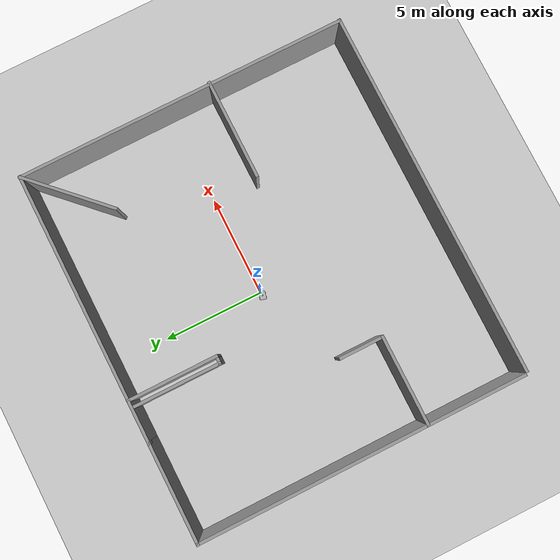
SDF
<sdf version="1.7">
 <world name="default">
  <light name="sun" type="directional">
   <pose>0 0 10 0 -0 0</pose>
   <diffuse>0.8 0.8 0.8 1</diffuse>
   <specular>0.2 0.2 0.2 1</specular>
   <attenuation>
    <range>1000</range>
    <constant>0.9</constant>
    <linear>0.01</linear>
    <quadratic>0.001</quadratic>
   </attenuation>
   <direction>-0.5 0.1 -0.9</direction>
   <spot><inner_angle>0</inner_angle><outer_angle>0</outer_angle><falloff>0</falloff></spot>
  </light>
  <model name="ground_plane">
   <static>1</static>
   <link name="link">
    <collision name="collision">
     <geometry><plane><normal>0 0 1</normal><size>100 100</size></plane></geometry>
     <surface><friction><ode><mu>100</mu><mu2>50</mu2></ode></friction></surface>
    </collision>
    <visual name="visual">
     <cast_shadows>0</cast_shadows>
     <geometry><plane><normal>0 0 1</normal><size>100 100</size></plane></geometry>
     <material>
      <script><uri>file://media/materials/scripts/gazebo.material</uri><name>Gazebo/Grey</name></script>
     </material>
    </visual>
   </link>
  </model>
  <gravity>0 0 -9.8</gravity>
  <magnetic_field>6e-06 2.3e-05 -4.2e-05</magnetic_field>
  <atmosphere type="adiabatic"/>
  <physics type="ode">
   <max_step_size>0.001</max_step_size>
   <real_time_factor>1</real_time_factor>
   <real_time_update_rate>1000</real_time_update_rate>
  </physics>
  <scene><ambient>0.4 0.4 0.4 1</ambient><background>0.7 0.7 0.7 1</background><shadows>1</shadows></scene>
  <audio><device>default</device></audio>
  <spherical_coordinates>
   <surface_model>EARTH_WGS84</surface_model>
   <latitude_deg>0</latitude_deg>
   <longitude_deg>0</longitude_deg>
   <elevation>0</elevation>
   <heading_deg>0</heading_deg>
  </spherical_coordinates>
  <model name="my_robot">
   <link name="base_footprint">
    <inertial>
     <pose>0.00973 0 0.024324 0 -0 0</pose>
     <mass>3.7</mass>
     <inertia>
      <ixx>0.0610108</ixx>
      <ixy>0</ixy>
      <ixz>-0.00452432</ixz>
      <iyy>0.0671405</iyy>
      <iyz>0</iyz>
      <izz>0.0576297</izz>
     </inertia>
    </inertial>
    <collision name="base_footprint_fixed_joint_lump__base_link_collision">
     <pose>0 0 0.05 0 -0 0</pose>
     <geometry><box><size>0.4 0.3 0.1</size></box></geometry>
    </collision>
    <collision name="base_footprint_fixed_joint_lump__camera_link_collision_1">
     <pose>0.18 0 0.15 0 -0 0</pose>
     <geometry><box><size>0.04 0.04 0.04</size></box></geometry>
    </collision>
    <collision name="base_footprint_fixed_joint_lump__lidar_collision_2">
     <pose>0 0 0.12 0 -0 0</pose>
     <geometry><cylinder><length>0.03</length><radius>0.03</radius></cylinder></geometry>
    </collision>
    <visual name="base_footprint_fixed_joint_lump__base_link_visual">
     <pose>0 0 0.05 0 -0 0</pose>
     <geometry><box><size>0.4 0.3 0.1</size></box></geometry>
    </visual>
    <visual name="base_footprint_fixed_joint_lump__camera_link_visual_1">
     <pose>0.18 0 0.15 0 -0 0</pose>
     <geometry><box><size>0.04 0.04 0.04</size></box></geometry>
    </visual>
    <visual name="base_footprint_fixed_joint_lump__lidar_visual_2">
     <pose>0 0 0.12 0 -0 0</pose>
     <geometry><cylinder><length>0.03</length><radius>0.03</radius></cylinder></geometry>
    </visual>
    <sensor name="camera_sensor" type="camera">
     <update_rate>30</update_rate>
     <camera>
      <horizontal_fov>1.396</horizontal_fov>
      <image><width>640</width><height>480</height><format>R8G8B8</format></image>
      <clip><near>0.05</near><far>20</far></clip>
     </camera>
     <plugin name="gazebo_ros_camera" filename="libgazebo_ros_camera.so">
      <camera_name>camera</camera_name>
      <image_topic_name>image_raw</image_topic_name>
      <camera_info_topic_name>camera_info</camera_info_topic_name>
      <frame_name>camera_link</frame_name>
     </plugin>
     <pose>0.18 0 0.15 0 -0 0</pose>
    </sensor>
    <sensor name="lidar_sensor" type="ray">
     <visualize>1</visualize>
     <update_rate>10</update_rate>
     <ray>
      <scan>
       <horizontal>
        <samples>360</samples>
        <resolution>1</resolution>
        <min_angle>-3.14159</min_angle>
        <max_angle>3.14159</max_angle>
       </horizontal>
       <vertical><samples>1</samples><min_angle>0</min_angle><max_angle>0</max_angle></vertical>
      </scan>
      <range><min>0.12</min><max>10</max><resolution>0.01</resolution></range>
     </ray>
     <plugin name="gazebo_ros_laser" filename="libgazebo_ros_ray_sensor.so">
      <ros><namespace>/</namespace></ros>
      <output_type>sensor_msgs/LaserScan</output_type>
      <topic_name>scan</topic_name>
      <frame_name>lidar</frame_name>
     </plugin>
     <pose>0 0 0.12 0 -0 0</pose>
    </sensor>
   </link>
   <joint name="left_front_wheel_joint" type="revolute">
    <pose relative_to="base_footprint">0.1 0.15 0.025 0 -0 0</pose>
    <parent>base_footprint</parent>
    <child>left_front_wheel</child>
    <axis>
     <xyz>0 1 0</xyz>
     <limit><lower>-1e+16</lower><upper>1e+16</upper></limit>
     <dynamics><spring_reference>0</spring_reference><spring_stiffness>0</spring_stiffness></dynamics>
    </axis>
   </joint>
   <link name="left_front_wheel">
    <pose relative_to="left_front_wheel_joint">0 0 0 0 -0 0</pose>
    <inertial>
     <mass>0.5</mass>
     <inertia><ixx>0.001</ixx><ixy>0</ixy><ixz>0</ixz><iyy>0.001</iyy><iyz>0</iyz><izz>0.001</izz></inertia>
    </inertial>
    <collision name="left_front_wheel_collision">
     <pose>0 0 0 1.57 -0 0</pose>
     <geometry><cylinder><length>0.04</length><radius>0.06</radius></cylinder></geometry>
    </collision>
    <visual name="left_front_wheel_visual">
     <pose>0 0 0 1.57 -0 0</pose>
     <geometry><cylinder><length>0.04</length><radius>0.06</radius></cylinder></geometry>
    </visual>
   </link>
   <joint name="left_rear_wheel_joint" type="revolute">
    <pose relative_to="base_footprint">-0.1 0.15 0.025 0 -0 0</pose>
    <parent>base_footprint</parent>
    <child>left_rear_wheel</child>
    <axis>
     <xyz>0 1 0</xyz>
     <limit><lower>-1e+16</lower><upper>1e+16</upper></limit>
     <dynamics><spring_reference>0</spring_reference><spring_stiffness>0</spring_stiffness></dynamics>
    </axis>
   </joint>
   <link name="left_rear_wheel">
    <pose relative_to="left_rear_wheel_joint">0 0 0 0 -0 0</pose>
    <inertial>
     <mass>0.5</mass>
     <inertia><ixx>0.001</ixx><ixy>0</ixy><ixz>0</ixz><iyy>0.001</iyy><iyz>0</iyz><izz>0.001</izz></inertia>
    </inertial>
    <collision name="left_rear_wheel_collision">
     <pose>0 0 0 1.57 -0 0</pose>
     <geometry><cylinder><length>0.04</length><radius>0.06</radius></cylinder></geometry>
    </collision>
    <visual name="left_rear_wheel_visual">
     <pose>0 0 0 1.57 -0 0</pose>
     <geometry><cylinder><length>0.04</length><radius>0.06</radius></cylinder></geometry>
    </visual>
   </link>
   <joint name="right_front_wheel_joint" type="revolute">
    <pose relative_to="base_footprint">0.1 -0.15 0.025 0 -0 0</pose>
    <parent>base_footprint</parent>
    <child>right_front_wheel</child>
    <axis>
     <xyz>0 1 0</xyz>
     <limit><lower>-1e+16</lower><upper>1e+16</upper></limit>
     <dynamics><spring_reference>0</spring_reference><spring_stiffness>0</spring_stiffness></dynamics>
    </axis>
   </joint>
   <link name="right_front_wheel">
    <pose relative_to="right_front_wheel_joint">0 0 0 0 -0 0</pose>
    <inertial>
     <mass>0.5</mass>
     <inertia><ixx>0.001</ixx><ixy>0</ixy><ixz>0</ixz><iyy>0.001</iyy><iyz>0</iyz><izz>0.001</izz></inertia>
    </inertial>
    <collision name="right_front_wheel_collision">
     <pose>0 0 0 1.57 -0 0</pose>
     <geometry><cylinder><length>0.04</length><radius>0.06</radius></cylinder></geometry>
    </collision>
    <visual name="right_front_wheel_visual">
     <pose>0 0 0 1.57 -0 0</pose>
     <geometry><cylinder><length>0.04</length><radius>0.06</radius></cylinder></geometry>
    </visual>
   </link>
   <joint name="right_rear_wheel_joint" type="revolute">
    <pose relative_to="base_footprint">-0.1 -0.15 0.025 0 -0 0</pose>
    <parent>base_footprint</parent>
    <child>right_rear_wheel</child>
    <axis>
     <xyz>0 1 0</xyz>
     <limit><lower>-1e+16</lower><upper>1e+16</upper></limit>
     <dynamics><spring_reference>0</spring_reference><spring_stiffness>0</spring_stiffness></dynamics>
    </axis>
   </joint>
   <link name="right_rear_wheel">
    <pose relative_to="right_rear_wheel_joint">0 0 0 0 -0 0</pose>
    <inertial>
     <mass>0.5</mass>
     <inertia><ixx>0.001</ixx><ixy>0</ixy><ixz>0</ixz><iyy>0.001</iyy><iyz>0</iyz><izz>0.001</izz></inertia>
    </inertial>
    <collision name="right_rear_wheel_collision">
     <pose>0 0 0 1.57 -0 0</pose>
     <geometry><cylinder><length>0.04</length><radius>0.06</radius></cylinder></geometry>
    </collision>
    <visual name="right_rear_wheel_visual">
     <pose>0 0 0 1.57 -0 0</pose>
     <geometry><cylinder><length>0.04</length><radius>0.06</radius></cylinder></geometry>
    </visual>
   </link>
   <static>0</static>
   <plugin name="diff_drive" filename="libgazebo_ros_diff_drive.so">
    <left_joint>left_front_wheel_joint</left_joint>
    <right_joint>right_front_wheel_joint</right_joint>
    <wheel_separation>0.30</wheel_separation>
    <wheel_diameter>0.12</wheel_diameter>
    <command_topic>/cmd_vel</command_topic>
    <odometry_topic>/odom</odometry_topic>
    <robot_base_frame>base_footprint</robot_base_frame>
    <odometry_frame>odom</odometry_frame>
    <publish_odom>1</publish_odom>
    <publish_odom_tf>1</publish_odom_tf>
   </plugin>
   <pose>-0.160048 -0.01763 0.035013 -5e-06 -1.2e-05 -0.229355</pose>
  </model>
  <model name="maze_1">
   <pose>0.38742 -0.706662 0 0 -0 0</pose>
   <link name="Wall_10">
    <collision name="Wall_10_Collision">
     <geometry><box><size>2.25 0.15 2.5</size></box></geometry>
     <pose>0 0 1.25 0 -0 0</pose>
    </collision>
    <visual name="Wall_10_Visual">
     <pose>0 0 1.25 0 -0 0</pose>
     <geometry><box><size>2.25 0.15 2.5</size></box></geometry>
     <material>
      <script><uri>file://media/materials/scripts/gazebo.material</uri><name>Gazebo/Grey</name></script>
      <ambient>1 1 1 1</ambient>
     </material>
     <meta><layer>0</layer></meta>
    </visual>
    <pose>-4.78472 -2.14046 0 0 -0 1.5708</pose>
   </link>
   <link name="Wall_12">
    <collision name="Wall_12_Collision">
     <geometry><box><size>13.5 0.15 2.5</size></box></geometry>
     <pose>0 0 1.25 0 -0 0</pose>
    </collision>
    <visual name="Wall_12_Visual">
     <pose>0 0 1.25 0 -0 0</pose>
     <geometry><box><size>13.5 0.15 2.5</size></box></geometry>
     <material>
      <script><uri>file://media/materials/scripts/gazebo.material</uri><name>Gazebo/Grey</name></script>
      <ambient>1 1 1 1</ambient>
     </material>
     <meta><layer>0</layer></meta>
    </visual>
    <pose>2.39028 8.15954 0 0 -0 0</pose>
   </link>
   <link name="Wall_13">
    <collision name="Wall_13_Collision">
     <geometry><box><size>16.5003 0.15 2.5</size></box></geometry>
     <pose>0 0 1.25 0 -0 0</pose>
    </collision>
    <visual name="Wall_13_Visual">
     <pose>0 0 1.25 0 -0 0</pose>
     <geometry><box><size>16.5003 0.15 2.5</size></box></geometry>
     <material>
      <script><uri>file://media/materials/scripts/gazebo.material</uri><name>Gazebo/Grey</name></script>
      <ambient>1 1 1 1</ambient>
     </material>
     <meta><layer>0</layer></meta>
    </visual>
    <pose>9.06528 -0.015456 0 0 -0 -1.5708</pose>
   </link>
   <link name="Wall_14">
    <collision name="Wall_14_Collision">
     <geometry><box><size>18.25 0.15 2.5</size></box></geometry>
     <pose>0 0 1.25 0 -0 0</pose>
    </collision>
    <visual name="Wall_14_Visual">
     <pose>0 0 1.25 0 -0 0</pose>
     <geometry><box><size>18.25 0.15 2.5</size></box></geometry>
     <material>
      <script><uri>file://media/materials/scripts/gazebo.material</uri><name>Gazebo/Grey</name></script>
      <ambient>1 1 1 1</ambient>
     </material>
     <meta><layer>0</layer></meta>
    </visual>
    <pose>0.035391 -8.19046 0 0 -0 3.14159</pose>
   </link>
   <link name="Wall_17">
    <collision name="Wall_17_Collision">
     <geometry><box><size>4.75 0.15 2.5</size></box></geometry>
     <pose>0 0 1.25 0 -0 0</pose>
    </collision>
    <visual name="Wall_17_Visual">
     <pose>0 0 1.25 0 -0 0</pose>
     <geometry><box><size>4.75 0.15 2.5</size></box></geometry>
     <material>
      <script><uri>file://media/materials/scripts/gazebo.material</uri><name>Gazebo/Grey</name></script>
      <ambient>1 1 1 1</ambient>
     </material>
     <meta><layer>0</layer></meta>
    </visual>
    <pose>7.43893 6.5332 0 0 -0 -2.35619</pose>
   </link>
   <link name="Wall_19">
    <collision name="Wall_19_Collision">
     <geometry><box><size>5 0.15 2.5</size></box></geometry>
     <pose>0 0 1.25 0 -0 0</pose>
    </collision>
    <visual name="Wall_19_Visual">
     <pose>0 0 1.25 0 -0 0</pose>
     <geometry><box><size>5 0.15 2.5</size></box></geometry>
     <material>
      <script><uri>file://media/materials/scripts/gazebo.material</uri><name>Gazebo/Grey</name></script>
      <ambient>1 1 1 1</ambient>
     </material>
     <meta><layer>0</layer></meta>
    </visual>
    <pose>6.70972 -1.47457 0 0 -0 0</pose>
   </link>
   <link name="Wall_21">
    <collision name="Wall_21_Collision">
     <geometry><box><size>4.5 0.15 2.5</size></box></geometry>
     <pose>0 0 1.25 0 -0 0</pose>
    </collision>
    <visual name="Wall_21_Visual">
     <pose>0 0 1.25 0 -0 0</pose>
     <geometry><box><size>4.5 0.15 2.5</size></box></geometry>
     <material>
      <script><uri>file://media/materials/scripts/gazebo.material</uri><name>Gazebo/Grey</name></script>
      <ambient>1 1 1 1</ambient>
     </material>
     <meta><layer>0</layer></meta>
    </visual>
    <pose>-2.55429 5.98088 0 0 -0 -1.5708</pose>
   </link>
   <link name="Wall_24">
    <collision name="Wall_24_Collision">
     <geometry><box><size>0.5 0.15 2.5</size></box></geometry>
     <pose>0 0 1.25 0 -0 0</pose>
    </collision>
    <visual name="Wall_24_Visual">
     <pose>0 0 1.25 0 -0 0</pose>
     <geometry><box><size>0.5 0.15 2.5</size></box></geometry>
     <material>
      <script><uri>file://media/materials/scripts/gazebo.material</uri><name>Gazebo/Grey</name></script>
      <ambient>1 1 1 1</ambient>
     </material>
     <meta><layer>0</layer></meta>
    </visual>
    <pose>-2.37929 3.80588 0 0 -0 0</pose>
   </link>
   <link name="Wall_25">
    <collision name="Wall_25_Collision">
     <geometry><box><size>4.5 0.15 2.5</size></box></geometry>
     <pose>0 0 1.25 0 -0 0</pose>
    </collision>
    <visual name="Wall_25_Visual">
     <pose>0 0 1.25 0 -0 0</pose>
     <geometry><box><size>4.5 0.15 2.5</size></box></geometry>
     <material>
      <script><uri>file://media/materials/scripts/gazebo.material</uri><name>Gazebo/Grey</name></script>
      <ambient>1 1 1 1</ambient>
     </material>
     <meta><layer>0</layer></meta>
    </visual>
    <pose>-2.20429 5.98088 0 0 -0 1.5708</pose>
   </link>
   <link name="Wall_27">
    <collision name="Wall_27_Collision">
     <geometry><box><size>5 0.15 2.5</size></box></geometry>
     <pose>0 0 1.25 0 -0 0</pose>
    </collision>
    <visual name="Wall_27_Visual">
     <pose>0 0 1.25 0 -0 0</pose>
     <geometry><box><size>5 0.15 2.5</size></box></geometry>
     <material>
      <script><uri>file://media/materials/scripts/gazebo.material</uri><name>Gazebo/Grey</name></script>
      <ambient>1 1 1 1</ambient>
     </material>
     <meta><layer>0</layer></meta>
    </visual>
    <pose>-9.13472 -5.61546 0 0 -0 -1.5708</pose>
   </link>
   <link name="Wall_5">
    <collision name="Wall_5_Collision">
     <geometry><box><size>11.5 0.15 2.5</size></box></geometry>
     <pose>0 0 1.25 0 -0 0</pose>
    </collision>
    <visual name="Wall_5_Visual">
     <pose>0 0 1.25 0 -0 0</pose>
     <geometry><box><size>11.5 0.15 2.5</size></box></geometry>
     <material>
      <script><uri>file://media/materials/scripts/gazebo.material</uri><name>Gazebo/Grey</name></script>
      <ambient>1 1 1 1</ambient>
     </material>
     <meta><layer>0</layer></meta>
    </visual>
    <pose>-9.13472 2.48454 0 0 -0 1.5708</pose>
   </link>
   <link name="Wall_7">
    <collision name="Wall_7_Collision">
     <geometry><box><size>5 0.15 2.5</size></box></geometry>
     <pose>0 0 1.25 0 -0 0</pose>
    </collision>
    <visual name="Wall_7_Visual">
     <pose>0 0 1.25 0 -0 0</pose>
     <geometry><box><size>5 0.15 2.5</size></box></geometry>
     <material>
      <script><uri>file://media/materials/scripts/gazebo.material</uri><name>Gazebo/Grey</name></script>
      <ambient>1 1 1 1</ambient>
     </material>
     <meta><layer>0</layer></meta>
    </visual>
    <pose>-6.70972 8.15954 0 0 -0 0</pose>
   </link>
   <link name="Wall_9">
    <collision name="Wall_9_Collision">
     <geometry><box><size>4.5 0.15 2.5</size></box></geometry>
     <pose>0 0 1.25 0 -0 0</pose>
    </collision>
    <visual name="Wall_9_Visual">
     <pose>0 0 1.25 0 -0 0</pose>
     <geometry><box><size>4.5 0.15 2.5</size></box></geometry>
     <material>
      <script><uri>file://media/materials/scripts/gazebo.material</uri><name>Gazebo/Grey</name></script>
      <ambient>1 1 1 1</ambient>
     </material>
     <meta><layer>0</layer></meta>
    </visual>
    <pose>-6.95972 -3.19046 0 0 -0 0</pose>
   </link>
   <static>1</static>
  </model>
 </world>
</sdf>
